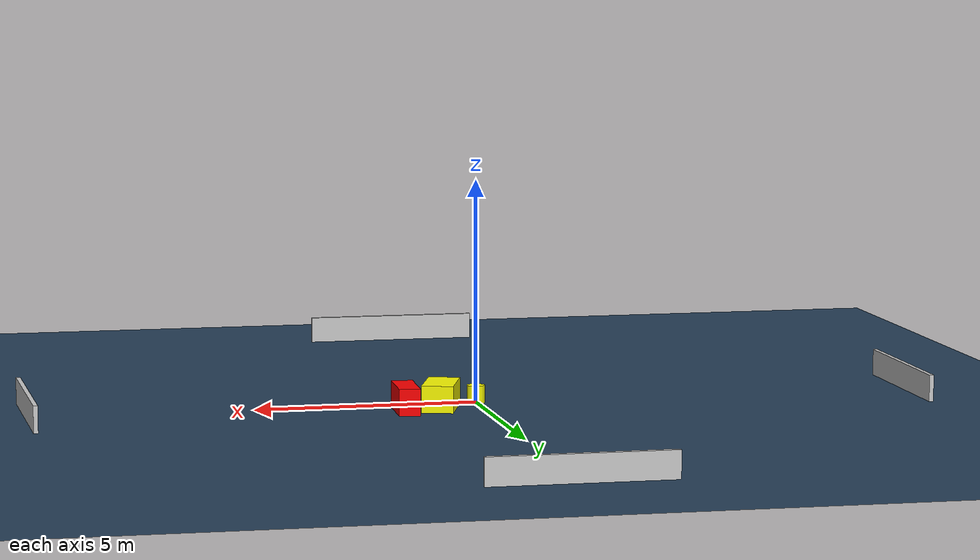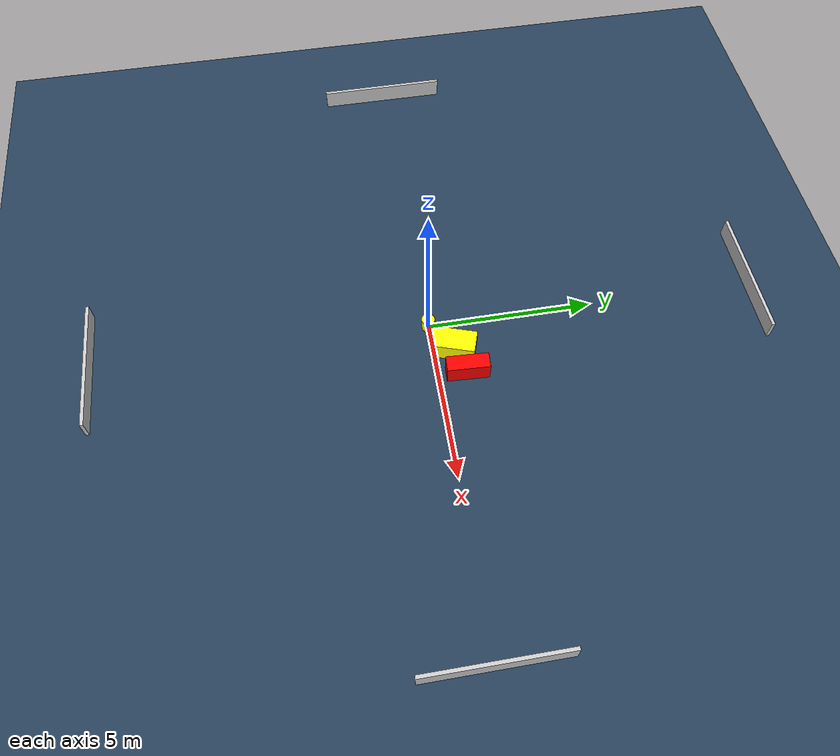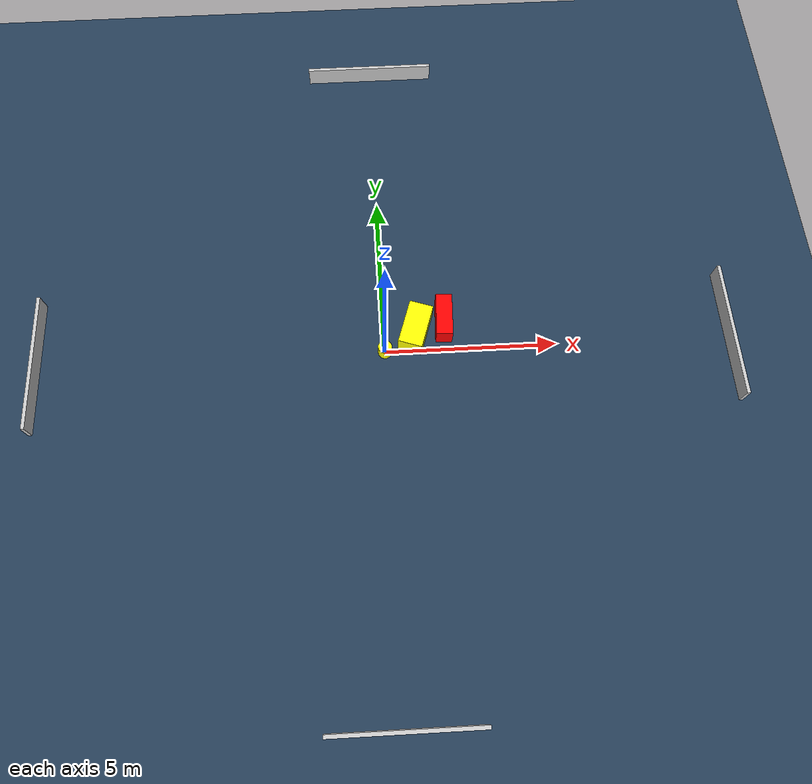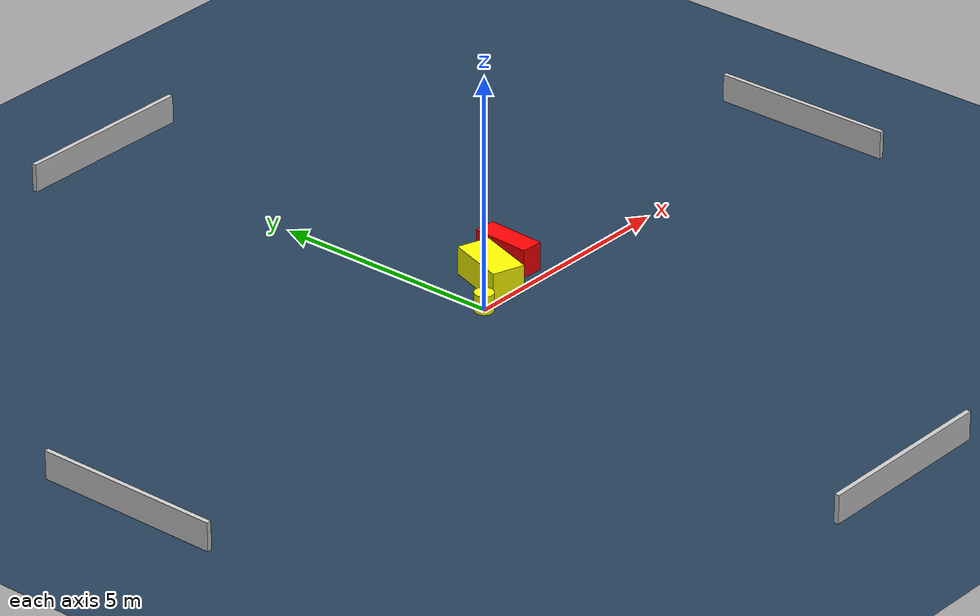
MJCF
<?xml version="1.0" ?>
<mujoco model="generated_environment">
  <option timestep="0.01" integrator="RK4" cone="elliptic"/>
  <default>
    <geom density="1"/>
  </default>
  <asset>
    <texture builtin="gradient" height="3072" name="skybox" rgb1="0.3 0.5 0.7" rgb2="0 0 0" type="skybox" width="512"/>
    <texture builtin="checker" height="300" name="groundplane" rgb1="0.2 0.3 0.4" rgb2="0.1 0.2 0.3" type="2d" width="300"/>
    <material name="groundplane" reflectance="0.2" texrepeat="5 5" texture="groundplane"/>
  </asset>
  <worldbody>
    <light dir="0 0 -1" directional="true" pos="0 0 1.5"/>
    <geom condim="3" friction="0.5 0.005 0.001" material="groundplane" name="floor" pos="0 0 0" size="0 0 0.05" type="plane"/>
    <body name="walls">
      <geom name="wall_1" condim="4" pos="-10.0 0.0 0.3" rgba="0.800000011920929 0.800000011920929 0.800000011920929 1.0" size="0.05 2.0 0.3" type="box"/>
      <geom name="wall_2" condim="4" pos="10.0 0.0 0.3" rgba="0.800000011920929 0.800000011920929 0.800000011920929 1.0" size="0.05 2.0 0.3" type="box"/>
      <geom name="wall_3" condim="4" pos="0.0 -10.0 0.3" rgba="0.800000011920929 0.800000011920929 0.800000011920929 1.0" size="2.0 0.05 0.3" type="box"/>
      <geom name="wall_4" condim="4" pos="0.0 10.0 0.3" rgba="0.800000011920929 0.800000011920929 0.800000011920929 1.0" size="2.0 0.05 0.3" type="box"/>
    </body>
    <body name="robot">
      <joint name="joint_x" type="slide" pos="0 0 0" axis="1 0 0"/>
      <joint name="joint_y" type="slide" pos="0 0 0" axis="0 1 0"/>
      <geom name="robot" type="cylinder" pos="0.0 0.0 0.2" size="0.2 0.2 0.0" mass="5.0" friction="1.0 0.005 0.0001" condim="4" rgba="1.0 1.0 0.0 1.0"/>
    </body>
    <body name="obstacle_1_movable">
      <geom name="obstacle_1_movable" condim="4" pos="0.9203390399149771 0.605105121644141 0.3" euler="0 0 161.54278557767626" friction="0.0 0.005 0.001" rgba="1.0 1.0 0.0 1.0" size="0.3515824108005744 0.6577492252065753 0.3" type="box" mass="0.1"/>
      <joint type="free"/>
    </body>
    <body name="obstacle_2_static">
      <geom name="obstacle_2_static" condim="4" pos="1.7593731229499654 0.8683916420725889 0.3" euler="0 0 357.13203561506367" friction="0.0 0.005 0.001" rgba="1.0 0.0 0.0 1.0" size="0.23671831618117073 0.6286197604302608 0.3" type="box"/>
    </body>
  </worldbody>
  <actuator>
    <motor name="actuator_x" joint="joint_x" gear="1" ctrlrange="-1 1"/>
    <motor name="actuator_y" joint="joint_y" gear="1" ctrlrange="-1 1"/>
  </actuator>
</mujoco>
